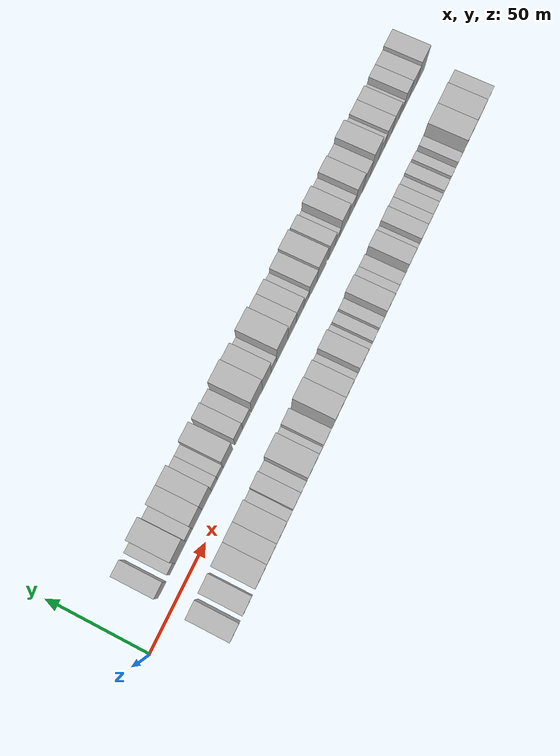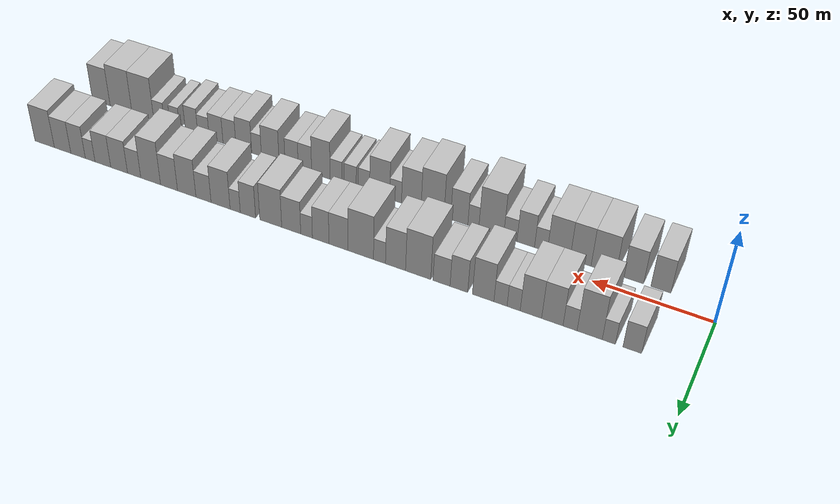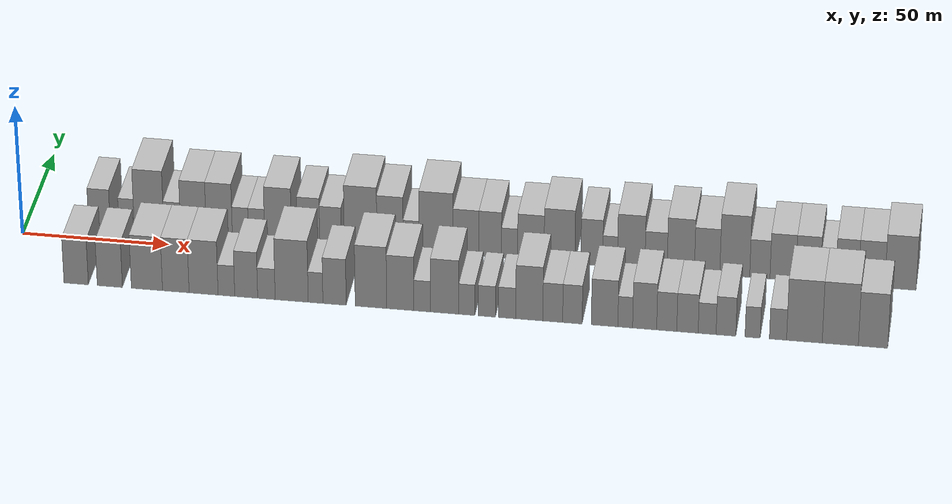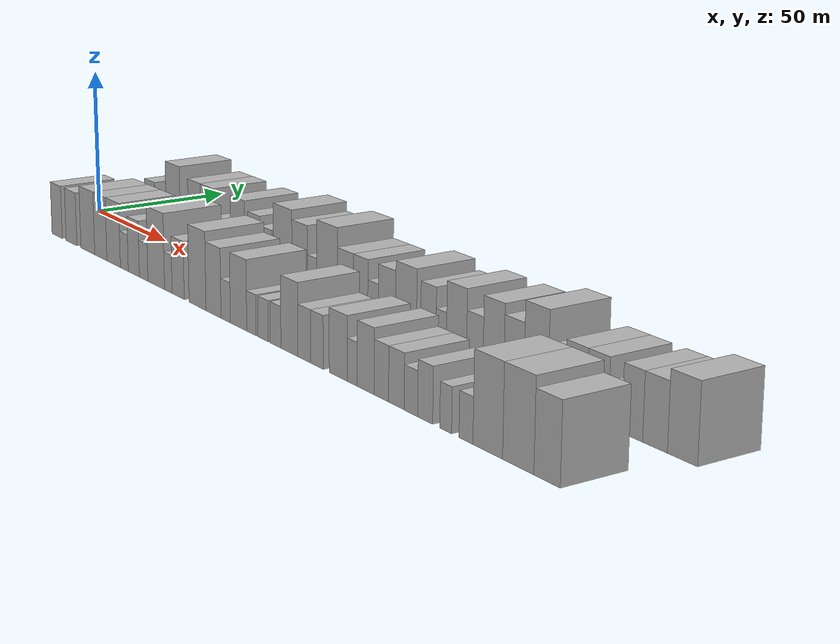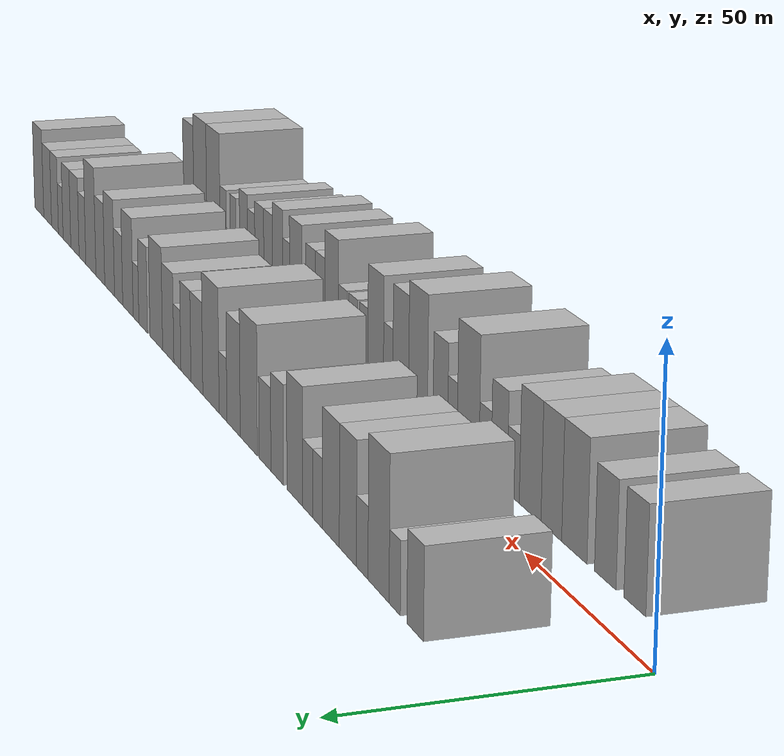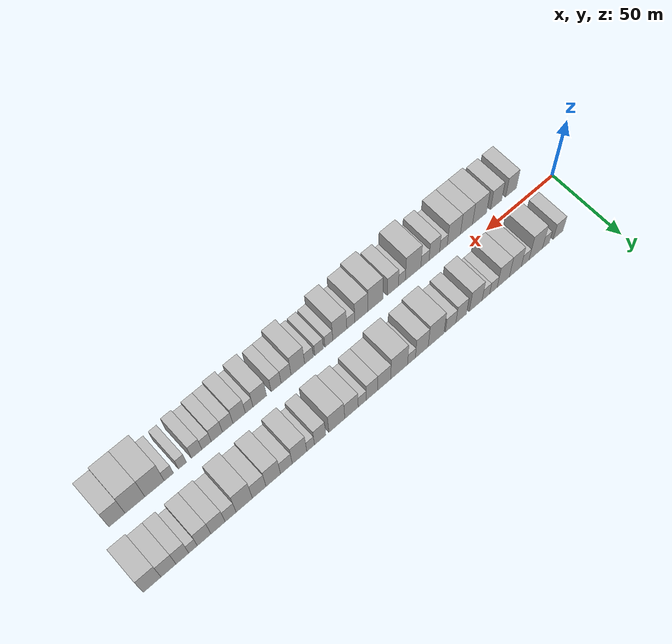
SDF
<sdf version="1.6">
 <world name="default">
  <scene>
   <sky><clouds><speed>12</speed></clouds></sky>
   <ambient>0.4 0.4 0.4 1</ambient>
   <background>0.7 0.7 0.7 1</background>
   <shadows>1</shadows>
  </scene>
  <gravity>0 0 -9.8066</gravity>
  <magnetic_field>6e-06 2.3e-05 -4.2e-05</magnetic_field>
  <physics default="0" name="default_physics" type="ode">
   <ode>
    <solver>
     <type>quick</type>
     <iters>10</iters>
     <sor>1.0</sor>
     <use_dynamic_moi_rescaling>0</use_dynamic_moi_rescaling>
    </solver>
    <constraints>
     <cfm>0</cfm>
     <erp>0.2</erp>
     <contact_max_correcting_vel>100</contact_max_correcting_vel>
     <contact_surface_layer>0.001</contact_surface_layer>
    </constraints>
   </ode>
   <max_step_size>0.004</max_step_size>
   <real_time_factor>1</real_time_factor>
   <real_time_update_rate>250</real_time_update_rate>
  </physics>
  <light name="sun" type="directional">
   <pose>0 0 10 0 0 0</pose>
   <diffuse>0.8 0.8 0.8 1</diffuse>
   <specular>0.2 0.2 0.2 1</specular>
   <attenuation>
    <range>1000</range>
    <constant>0.9</constant>
    <linear>0.01</linear>
    <quadratic>0.001</quadratic>
   </attenuation>
   <direction>-0.5 0.1 -0.9</direction>
  </light>
  <model name="building_1">
   <static>1</static>
   <pose>24.6984 17.5000 0 0.000000 0.000000 1.570796</pose>
   <link name="link">
    <pose>0 0 7.50 0 0 0</pose>
    <collision name="collision"><geometry><box><size>20.0000 7.3968 15.0000</size></box></geometry></collision>
    <visual name="visual">
     <cast_shadows>0</cast_shadows>
     <geometry><box><size>20.0000 7.3968 15.0000</size></box></geometry>
     <material>
      <script>
       <uri>model://HANNAS_wall/materials/scripts</uri>
       <uri>model://HANNAS_wall/materials/textures</uri>
       <name>vrc/HANNAS_wall</name>
      </script>
     </material>
    </visual>
   </link>
  </model>
  <model name="building_2">
   <static>1</static>
   <pose>34.0236 17.5000 0 0.000000 0.000000 1.570796</pose>
   <link name="link">
    <pose>0 0 6.00 0 0 0</pose>
    <collision name="collision"><geometry><box><size>20.0000 5.2536 12.0000</size></box></geometry></collision>
    <visual name="visual">
     <cast_shadows>0</cast_shadows>
     <geometry><box><size>20.0000 5.2536 12.0000</size></box></geometry>
     <material>
      <script>
       <uri>model://HANNAS_wall/materials/scripts</uri>
       <uri>model://HANNAS_wall/materials/textures</uri>
       <name>vrc/HANNAS_wall</name>
      </script>
     </material>
    </visual>
   </link>
  </model>
  <model name="building_3">
   <static>1</static>
   <pose>41.7122 17.5000 0 0.000000 0.000000 1.570796</pose>
   <link name="link">
    <pose>0 0 12.00 0 0 0</pose>
    <collision name="collision"><geometry><box><size>20.0000 10.1236 24.0000</size></box></geometry></collision>
    <visual name="visual">
     <cast_shadows>0</cast_shadows>
     <geometry><box><size>20.0000 10.1236 24.0000</size></box></geometry>
     <material>
      <script>
       <uri>model://HANNAS_wall/materials/scripts</uri>
       <uri>model://HANNAS_wall/materials/textures</uri>
       <name>vrc/HANNAS_wall</name>
      </script>
     </material>
    </visual>
   </link>
  </model>
  <model name="building_4">
   <static>1</static>
   <pose>49.6409 17.5000 0 0.000000 0.000000 1.570796</pose>
   <link name="link">
    <pose>0 0 6.00 0 0 0</pose>
    <collision name="collision"><geometry><box><size>20.0000 5.7338 12.0000</size></box></geometry></collision>
    <visual name="visual">
     <cast_shadows>0</cast_shadows>
     <geometry><box><size>20.0000 5.7338 12.0000</size></box></geometry>
     <material>
      <script>
       <uri>model://HANNAS_wall/materials/scripts</uri>
       <uri>model://HANNAS_wall/materials/textures</uri>
       <name>vrc/HANNAS_wall</name>
      </script>
     </material>
    </visual>
   </link>
  </model>
  <model name="building_5">
   <static>1</static>
   <pose>56.8956 17.5000 0 0.000000 0.000000 1.570796</pose>
   <link name="link">
    <pose>0 0 10.50 0 0 0</pose>
    <collision name="collision"><geometry><box><size>20.0000 8.7756 21.0000</size></box></geometry></collision>
    <visual name="visual">
     <cast_shadows>0</cast_shadows>
     <geometry><box><size>20.0000 8.7756 21.0000</size></box></geometry>
     <material>
      <script>
       <uri>model://HANNAS_wall/materials/scripts</uri>
       <uri>model://HANNAS_wall/materials/textures</uri>
       <name>vrc/HANNAS_wall</name>
      </script>
     </material>
    </visual>
   </link>
  </model>
  <model name="building_6">
   <static>1</static>
   <pose>65.7322 17.5000 0 0.000000 0.000000 1.570796</pose>
   <link name="link">
    <pose>0 0 10.50 0 0 0</pose>
    <collision name="collision"><geometry><box><size>20.0000 8.8976 21.0000</size></box></geometry></collision>
    <visual name="visual">
     <cast_shadows>0</cast_shadows>
     <geometry><box><size>20.0000 8.8976 21.0000</size></box></geometry>
     <material>
      <script>
       <uri>model://HANNAS_wall/materials/scripts</uri>
       <uri>model://HANNAS_wall/materials/textures</uri>
       <name>vrc/HANNAS_wall</name>
      </script>
     </material>
    </visual>
   </link>
  </model>
  <model name="building_7">
   <static>1</static>
   <pose>72.9210 17.5000 0 0.000000 0.000000 1.570796</pose>
   <link name="link">
    <pose>0 0 6.00 0 0 0</pose>
    <collision name="collision"><geometry><box><size>20.0000 5.4799 12.0000</size></box></geometry></collision>
    <visual name="visual">
     <cast_shadows>0</cast_shadows>
     <geometry><box><size>20.0000 5.4799 12.0000</size></box></geometry>
     <material>
      <script>
       <uri>model://HANNAS_wall/materials/scripts</uri>
       <uri>model://HANNAS_wall/materials/textures</uri>
       <name>vrc/HANNAS_wall</name>
      </script>
     </material>
    </visual>
   </link>
  </model>
  <model name="building_8">
   <static>1</static>
   <pose>78.4243 17.5000 0 0.000000 0.000000 1.570796</pose>
   <link name="link">
    <pose>0 0 6.00 0 0 0</pose>
    <collision name="collision"><geometry><box><size>20.0000 5.5267 12.0000</size></box></geometry></collision>
    <visual name="visual">
     <cast_shadows>0</cast_shadows>
     <geometry><box><size>20.0000 5.5267 12.0000</size></box></geometry>
     <material>
      <script>
       <uri>model://HANNAS_wall/materials/scripts</uri>
       <uri>model://HANNAS_wall/materials/textures</uri>
       <name>vrc/HANNAS_wall</name>
      </script>
     </material>
    </visual>
   </link>
  </model>
  <model name="building_9">
   <static>1</static>
   <pose>85.7504 17.5000 0 0.000000 0.000000 1.570796</pose>
   <link name="link">
    <pose>0 0 10.50 0 0 0</pose>
    <collision name="collision"><geometry><box><size>20.0000 9.1255 21.0000</size></box></geometry></collision>
    <visual name="visual">
     <cast_shadows>0</cast_shadows>
     <geometry><box><size>20.0000 9.1255 21.0000</size></box></geometry>
     <material>
      <script>
       <uri>model://HANNAS_wall/materials/scripts</uri>
       <uri>model://HANNAS_wall/materials/textures</uri>
       <name>vrc/HANNAS_wall</name>
      </script>
     </material>
    </visual>
   </link>
  </model>
  <model name="building_10">
   <static>1</static>
   <pose>96.1043 17.5000 0 0.000000 0.000000 1.570796</pose>
   <link name="link">
    <pose>0 0 9.00 0 0 0</pose>
    <collision name="collision"><geometry><box><size>20.0000 7.5824 18.0000</size></box></geometry></collision>
    <visual name="visual">
     <cast_shadows>0</cast_shadows>
     <geometry><box><size>20.0000 7.5824 18.0000</size></box></geometry>
     <material>
      <script>
       <uri>model://HANNAS_wall/materials/scripts</uri>
       <uri>model://HANNAS_wall/materials/textures</uri>
       <name>vrc/HANNAS_wall</name>
      </script>
     </material>
    </visual>
   </link>
  </model>
  <model name="building_11">
   <static>1</static>
   <pose>103.5795 17.5000 0 0.000000 0.000000 1.570796</pose>
   <link name="link">
    <pose>0 0 7.50 0 0 0</pose>
    <collision name="collision"><geometry><box><size>20.0000 7.3680 15.0000</size></box></geometry></collision>
    <visual name="visual">
     <cast_shadows>0</cast_shadows>
     <geometry><box><size>20.0000 7.3680 15.0000</size></box></geometry>
     <material>
      <script>
       <uri>model://HANNAS_wall/materials/scripts</uri>
       <uri>model://HANNAS_wall/materials/textures</uri>
       <name>vrc/HANNAS_wall</name>
      </script>
     </material>
    </visual>
   </link>
  </model>
  <model name="building_12">
   <static>1</static>
   <pose>113.7813 17.5000 0 0.000000 0.000000 1.570796</pose>
   <link name="link">
    <pose>0 0 12.00 0 0 0</pose>
    <collision name="collision"><geometry><box><size>20.0000 11.0357 24.0000</size></box></geometry></collision>
    <visual name="visual">
     <cast_shadows>0</cast_shadows>
     <geometry><box><size>20.0000 11.0357 24.0000</size></box></geometry>
     <material>
      <script>
       <uri>model://HANNAS_wall/materials/scripts</uri>
       <uri>model://HANNAS_wall/materials/textures</uri>
       <name>vrc/HANNAS_wall</name>
      </script>
     </material>
    </visual>
   </link>
  </model>
  <model name="building_13">
   <static>1</static>
   <pose>123.7441 17.5000 0 0.000000 0.000000 1.570796</pose>
   <link name="link">
    <pose>0 0 10.50 0 0 0</pose>
    <collision name="collision"><geometry><box><size>20.0000 8.8899 21.0000</size></box></geometry></collision>
    <visual name="visual">
     <cast_shadows>0</cast_shadows>
     <geometry><box><size>20.0000 8.8899 21.0000</size></box></geometry>
     <material>
      <script>
       <uri>model://HANNAS_wall/materials/scripts</uri>
       <uri>model://HANNAS_wall/materials/textures</uri>
       <name>vrc/HANNAS_wall</name>
      </script>
     </material>
    </visual>
   </link>
  </model>
  <model name="building_14">
   <static>1</static>
   <pose>130.8703 17.5000 0 0.000000 0.000000 1.570796</pose>
   <link name="link">
    <pose>0 0 6.00 0 0 0</pose>
    <collision name="collision"><geometry><box><size>20.0000 5.3623 12.0000</size></box></geometry></collision>
    <visual name="visual">
     <cast_shadows>0</cast_shadows>
     <geometry><box><size>20.0000 5.3623 12.0000</size></box></geometry>
     <material>
      <script>
       <uri>model://HANNAS_wall/materials/scripts</uri>
       <uri>model://HANNAS_wall/materials/textures</uri>
       <name>vrc/HANNAS_wall</name>
      </script>
     </material>
    </visual>
   </link>
  </model>
  <model name="building_15">
   <static>1</static>
   <pose>139.3018 17.5000 0 0.000000 0.000000 1.570796</pose>
   <link name="link">
    <pose>0 0 12.00 0 0 0</pose>
    <collision name="collision"><geometry><box><size>20.0000 11.5008 24.0000</size></box></geometry></collision>
    <visual name="visual">
     <cast_shadows>0</cast_shadows>
     <geometry><box><size>20.0000 11.5008 24.0000</size></box></geometry>
     <material>
      <script>
       <uri>model://HANNAS_wall/materials/scripts</uri>
       <uri>model://HANNAS_wall/materials/textures</uri>
       <name>vrc/HANNAS_wall</name>
      </script>
     </material>
    </visual>
   </link>
  </model>
  <model name="building_16">
   <static>1</static>
   <pose>149.3966 17.5000 0 0.000000 0.000000 1.570796</pose>
   <link name="link">
    <pose>0 0 9.00 0 0 0</pose>
    <collision name="collision"><geometry><box><size>20.0000 8.6888 18.0000</size></box></geometry></collision>
    <visual name="visual">
     <cast_shadows>0</cast_shadows>
     <geometry><box><size>20.0000 8.6888 18.0000</size></box></geometry>
     <material>
      <script>
       <uri>model://HANNAS_wall/materials/scripts</uri>
       <uri>model://HANNAS_wall/materials/textures</uri>
       <name>vrc/HANNAS_wall</name>
      </script>
     </material>
    </visual>
   </link>
  </model>
  <model name="building_17">
   <static>1</static>
   <pose>157.5444 17.5000 0 0.000000 0.000000 1.570796</pose>
   <link name="link">
    <pose>0 0 9.00 0 0 0</pose>
    <collision name="collision"><geometry><box><size>20.0000 7.6067 18.0000</size></box></geometry></collision>
    <visual name="visual">
     <cast_shadows>0</cast_shadows>
     <geometry><box><size>20.0000 7.6067 18.0000</size></box></geometry>
     <material>
      <script>
       <uri>model://HANNAS_wall/materials/scripts</uri>
       <uri>model://HANNAS_wall/materials/textures</uri>
       <name>vrc/HANNAS_wall</name>
      </script>
     </material>
    </visual>
   </link>
  </model>
  <model name="building_18">
   <static>1</static>
   <pose>164.0554 17.5000 0 0.000000 0.000000 1.570796</pose>
   <link name="link">
    <pose>0 0 6.00 0 0 0</pose>
    <collision name="collision"><geometry><box><size>20.0000 5.4154 12.0000</size></box></geometry></collision>
    <visual name="visual">
     <cast_shadows>0</cast_shadows>
     <geometry><box><size>20.0000 5.4154 12.0000</size></box></geometry>
     <material>
      <script>
       <uri>model://HANNAS_wall/materials/scripts</uri>
       <uri>model://HANNAS_wall/materials/textures</uri>
       <name>vrc/HANNAS_wall</name>
      </script>
     </material>
    </visual>
   </link>
  </model>
  <model name="building_19">
   <static>1</static>
   <pose>171.2047 17.5000 0 0.000000 0.000000 1.570796</pose>
   <link name="link">
    <pose>0 0 9.00 0 0 0</pose>
    <collision name="collision"><geometry><box><size>20.0000 8.8832 18.0000</size></box></geometry></collision>
    <visual name="visual">
     <cast_shadows>0</cast_shadows>
     <geometry><box><size>20.0000 8.8832 18.0000</size></box></geometry>
     <material>
      <script>
       <uri>model://HANNAS_wall/materials/scripts</uri>
       <uri>model://HANNAS_wall/materials/textures</uri>
       <name>vrc/HANNAS_wall</name>
      </script>
     </material>
    </visual>
   </link>
  </model>
  <model name="building_20">
   <static>1</static>
   <pose>180.8166 17.5000 0 0.000000 0.000000 1.570796</pose>
   <link name="link">
    <pose>0 0 10.50 0 0 0</pose>
    <collision name="collision"><geometry><box><size>20.0000 10.3407 21.0000</size></box></geometry></collision>
    <visual name="visual">
     <cast_shadows>0</cast_shadows>
     <geometry><box><size>20.0000 10.3407 21.0000</size></box></geometry>
     <material>
      <script>
       <uri>model://HANNAS_wall/materials/scripts</uri>
       <uri>model://HANNAS_wall/materials/textures</uri>
       <name>vrc/HANNAS_wall</name>
      </script>
     </material>
    </visual>
   </link>
  </model>
  <model name="building_21">
   <static>1</static>
   <pose>191.6453 17.5000 0 0.000000 0.000000 1.570796</pose>
   <link name="link">
    <pose>0 0 9.00 0 0 0</pose>
    <collision name="collision"><geometry><box><size>20.0000 7.3166 18.0000</size></box></geometry></collision>
    <visual name="visual">
     <cast_shadows>0</cast_shadows>
     <geometry><box><size>20.0000 7.3166 18.0000</size></box></geometry>
     <material>
      <script>
       <uri>model://HANNAS_wall/materials/scripts</uri>
       <uri>model://HANNAS_wall/materials/textures</uri>
       <name>vrc/HANNAS_wall</name>
      </script>
     </material>
    </visual>
   </link>
  </model>
  <model name="building_22">
   <static>1</static>
   <pose>197.7555 17.5000 0 0.000000 0.000000 1.570796</pose>
   <link name="link">
    <pose>0 0 6.00 0 0 0</pose>
    <collision name="collision"><geometry><box><size>20.0000 4.9037 12.0000</size></box></geometry></collision>
    <visual name="visual">
     <cast_shadows>0</cast_shadows>
     <geometry><box><size>20.0000 4.9037 12.0000</size></box></geometry>
     <material>
      <script>
       <uri>model://HANNAS_wall/materials/scripts</uri>
       <uri>model://HANNAS_wall/materials/textures</uri>
       <name>vrc/HANNAS_wall</name>
      </script>
     </material>
    </visual>
   </link>
  </model>
  <model name="building_23">
   <static>1</static>
   <pose>204.8194 17.5000 0 0.000000 0.000000 1.570796</pose>
   <link name="link">
    <pose>0 0 10.50 0 0 0</pose>
    <collision name="collision"><geometry><box><size>20.0000 9.2242 21.0000</size></box></geometry></collision>
    <visual name="visual">
     <cast_shadows>0</cast_shadows>
     <geometry><box><size>20.0000 9.2242 21.0000</size></box></geometry>
     <material>
      <script>
       <uri>model://HANNAS_wall/materials/scripts</uri>
       <uri>model://HANNAS_wall/materials/textures</uri>
       <name>vrc/HANNAS_wall</name>
      </script>
     </material>
    </visual>
   </link>
  </model>
  <model name="building_24">
   <static>1</static>
   <pose>213.1341 17.5000 0 0.000000 0.000000 1.570796</pose>
   <link name="link">
    <pose>0 0 7.50 0 0 0</pose>
    <collision name="collision"><geometry><box><size>20.0000 7.4053 15.0000</size></box></geometry></collision>
    <visual name="visual">
     <cast_shadows>0</cast_shadows>
     <geometry><box><size>20.0000 7.4053 15.0000</size></box></geometry>
     <material>
      <script>
       <uri>model://HANNAS_wall/materials/scripts</uri>
       <uri>model://HANNAS_wall/materials/textures</uri>
       <name>vrc/HANNAS_wall</name>
      </script>
     </material>
    </visual>
   </link>
  </model>
  <model name="building_25">
   <static>1</static>
   <pose>221.3906 17.5000 0 0.000000 0.000000 1.570796</pose>
   <link name="link">
    <pose>0 0 10.50 0 0 0</pose>
    <collision name="collision"><geometry><box><size>20.0000 9.1077 21.0000</size></box></geometry></collision>
    <visual name="visual">
     <cast_shadows>0</cast_shadows>
     <geometry><box><size>20.0000 9.1077 21.0000</size></box></geometry>
     <material>
      <script>
       <uri>model://HANNAS_wall/materials/scripts</uri>
       <uri>model://HANNAS_wall/materials/textures</uri>
       <name>vrc/HANNAS_wall</name>
      </script>
     </material>
    </visual>
   </link>
  </model>
  <model name="building_26">
   <static>1</static>
   <pose>230.1751 17.5000 0 0.000000 0.000000 1.570796</pose>
   <link name="link">
    <pose>0 0 9.00 0 0 0</pose>
    <collision name="collision"><geometry><box><size>20.0000 8.4612 18.0000</size></box></geometry></collision>
    <visual name="visual">
     <cast_shadows>0</cast_shadows>
     <geometry><box><size>20.0000 8.4612 18.0000</size></box></geometry>
     <material>
      <script>
       <uri>model://HANNAS_wall/materials/scripts</uri>
       <uri>model://HANNAS_wall/materials/textures</uri>
       <name>vrc/HANNAS_wall</name>
      </script>
     </material>
    </visual>
   </link>
  </model>
  <model name="building_27">
   <static>1</static>
   <pose>239.3785 17.5000 0 0.000000 0.000000 1.570796</pose>
   <link name="link">
    <pose>0 0 12.00 0 0 0</pose>
    <collision name="collision"><geometry><box><size>20.0000 9.9455 24.0000</size></box></geometry></collision>
    <visual name="visual">
     <cast_shadows>0</cast_shadows>
     <geometry><box><size>20.0000 9.9455 24.0000</size></box></geometry>
     <material>
      <script>
       <uri>model://HANNAS_wall/materials/scripts</uri>
       <uri>model://HANNAS_wall/materials/textures</uri>
       <name>vrc/HANNAS_wall</name>
      </script>
     </material>
    </visual>
   </link>
  </model>
  <model name="building_28">
   <static>1</static>
   <pose>247.7230 17.5000 0 0.000000 0.000000 1.570796</pose>
   <link name="link">
    <pose>0 0 7.50 0 0 0</pose>
    <collision name="collision"><geometry><box><size>20.0000 6.7434 15.0000</size></box></geometry></collision>
    <visual name="visual">
     <cast_shadows>0</cast_shadows>
     <geometry><box><size>20.0000 6.7434 15.0000</size></box></geometry>
     <material>
      <script>
       <uri>model://HANNAS_wall/materials/scripts</uri>
       <uri>model://HANNAS_wall/materials/textures</uri>
       <name>vrc/HANNAS_wall</name>
      </script>
     </material>
    </visual>
   </link>
  </model>
  <model name="building_29">
   <static>1</static>
   <pose>255.3765 17.5000 0 0.000000 0.000000 1.570796</pose>
   <link name="link">
    <pose>0 0 9.00 0 0 0</pose>
    <collision name="collision"><geometry><box><size>20.0000 8.5637 18.0000</size></box></geometry></collision>
    <visual name="visual">
     <cast_shadows>0</cast_shadows>
     <geometry><box><size>20.0000 8.5637 18.0000</size></box></geometry>
     <material>
      <script>
       <uri>model://HANNAS_wall/materials/scripts</uri>
       <uri>model://HANNAS_wall/materials/textures</uri>
       <name>vrc/HANNAS_wall</name>
      </script>
     </material>
    </visual>
   </link>
  </model>
  <model name="building_30">
   <static>1</static>
   <pose>263.7326 17.5000 0 0.000000 0.000000 1.570796</pose>
   <link name="link">
    <pose>0 0 9.00 0 0 0</pose>
    <collision name="collision"><geometry><box><size>20.0000 8.1484 18.0000</size></box></geometry></collision>
    <visual name="visual">
     <cast_shadows>0</cast_shadows>
     <geometry><box><size>20.0000 8.1484 18.0000</size></box></geometry>
     <material>
      <script>
       <uri>model://HANNAS_wall/materials/scripts</uri>
       <uri>model://HANNAS_wall/materials/textures</uri>
       <name>vrc/HANNAS_wall</name>
      </script>
     </material>
    </visual>
   </link>
  </model>
  <model name="building_31">
   <static>1</static>
   <pose>270.3282 17.5000 0 0.000000 0.000000 1.570796</pose>
   <link name="link">
    <pose>0 0 6.00 0 0 0</pose>
    <collision name="collision"><geometry><box><size>20.0000 5.0429 12.0000</size></box></geometry></collision>
    <visual name="visual">
     <cast_shadows>0</cast_shadows>
     <geometry><box><size>20.0000 5.0429 12.0000</size></box></geometry>
     <material>
      <script>
       <uri>model://HANNAS_wall/materials/scripts</uri>
       <uri>model://HANNAS_wall/materials/textures</uri>
       <name>vrc/HANNAS_wall</name>
      </script>
     </material>
    </visual>
   </link>
  </model>
  <model name="building_32">
   <static>1</static>
   <pose>276.6278 17.5000 0 0.000000 0.000000 1.570796</pose>
   <link name="link">
    <pose>0 0 9.00 0 0 0</pose>
    <collision name="collision"><geometry><box><size>20.0000 7.5561 18.0000</size></box></geometry></collision>
    <visual name="visual">
     <cast_shadows>0</cast_shadows>
     <geometry><box><size>20.0000 7.5561 18.0000</size></box></geometry>
     <material>
      <script>
       <uri>model://HANNAS_wall/materials/scripts</uri>
       <uri>model://HANNAS_wall/materials/textures</uri>
       <name>vrc/HANNAS_wall</name>
      </script>
     </material>
    </visual>
   </link>
  </model>
  <model name="building_33">
   <static>1</static>
   <pose>284.7762 17.5000 0 0.000000 0.000000 1.570796</pose>
   <link name="link">
    <pose>0 0 9.00 0 0 0</pose>
    <collision name="collision"><geometry><box><size>20.0000 8.7407 18.0000</size></box></geometry></collision>
    <visual name="visual">
     <cast_shadows>0</cast_shadows>
     <geometry><box><size>20.0000 8.7407 18.0000</size></box></geometry>
     <material>
      <script>
       <uri>model://HANNAS_wall/materials/scripts</uri>
       <uri>model://HANNAS_wall/materials/textures</uri>
       <name>vrc/HANNAS_wall</name>
      </script>
     </material>
    </visual>
   </link>
  </model>
  <model name="building_34">
   <static>1</static>
   <pose>294.3097 17.5000 0 0.000000 0.000000 1.570796</pose>
   <link name="link">
    <pose>0 0 10.50 0 0 0</pose>
    <collision name="collision"><geometry><box><size>20.0000 10.3263 21.0000</size></box></geometry></collision>
    <visual name="visual">
     <cast_shadows>0</cast_shadows>
     <geometry><box><size>20.0000 10.3263 21.0000</size></box></geometry>
     <material>
      <script>
       <uri>model://HANNAS_wall/materials/scripts</uri>
       <uri>model://HANNAS_wall/materials/textures</uri>
       <name>vrc/HANNAS_wall</name>
      </script>
     </material>
    </visual>
   </link>
  </model>
  <model name="building_35">
   <static>1</static>
   <pose>24.1064 -17.5000 0 0.000000 0.000000 1.570796</pose>
   <link name="link">
    <pose>0 0 9.00 0 0 0</pose>
    <collision name="collision"><geometry><box><size>20.0000 8.2128 18.0000</size></box></geometry></collision>
    <visual name="visual">
     <cast_shadows>0</cast_shadows>
     <geometry><box><size>20.0000 8.2128 18.0000</size></box></geometry>
     <material>
      <script>
       <uri>model://HANNAS_wall/materials/scripts</uri>
       <uri>model://HANNAS_wall/materials/textures</uri>
       <name>vrc/HANNAS_wall</name>
      </script>
     </material>
    </visual>
   </link>
  </model>
  <model name="building_36">
   <static>1</static>
   <pose>35.4482 -17.5000 0 0.000000 0.000000 1.570796</pose>
   <link name="link">
    <pose>0 0 9.00 0 0 0</pose>
    <collision name="collision"><geometry><box><size>20.0000 8.4707 18.0000</size></box></geometry></collision>
    <visual name="visual">
     <cast_shadows>0</cast_shadows>
     <geometry><box><size>20.0000 8.4707 18.0000</size></box></geometry>
     <material>
      <script>
       <uri>model://HANNAS_wall/materials/scripts</uri>
       <uri>model://HANNAS_wall/materials/textures</uri>
       <name>vrc/HANNAS_wall</name>
      </script>
     </material>
    </visual>
   </link>
  </model>
  <model name="building_37">
   <static>1</static>
   <pose>47.9282 -17.5000 0 0.000000 0.000000 1.570796</pose>
   <link name="link">
    <pose>0 0 10.50 0 0 0</pose>
    <collision name="collision"><geometry><box><size>20.0000 10.4893 21.0000</size></box></geometry></collision>
    <visual name="visual">
     <cast_shadows>0</cast_shadows>
     <geometry><box><size>20.0000 10.4893 21.0000</size></box></geometry>
     <material>
      <script>
       <uri>model://HANNAS_wall/materials/scripts</uri>
       <uri>model://HANNAS_wall/materials/textures</uri>
       <name>vrc/HANNAS_wall</name>
      </script>
     </material>
    </visual>
   </link>
  </model>
  <model name="building_38">
   <static>1</static>
   <pose>57.6361 -17.5000 0 0.000000 0.000000 1.570796</pose>
   <link name="link">
    <pose>0 0 10.50 0 0 0</pose>
    <collision name="collision"><geometry><box><size>20.0000 8.9265 21.0000</size></box></geometry></collision>
    <visual name="visual">
     <cast_shadows>0</cast_shadows>
     <geometry><box><size>20.0000 8.9265 21.0000</size></box></geometry>
     <material>
      <script>
       <uri>model://HANNAS_wall/materials/scripts</uri>
       <uri>model://HANNAS_wall/materials/textures</uri>
       <name>vrc/HANNAS_wall</name>
      </script>
     </material>
    </visual>
   </link>
  </model>
  <model name="building_39">
   <static>1</static>
   <pose>66.9579 -17.5000 0 0.000000 0.000000 1.570796</pose>
   <link name="link">
    <pose>0 0 10.50 0 0 0</pose>
    <collision name="collision"><geometry><box><size>20.0000 9.7171 21.0000</size></box></geometry></collision>
    <visual name="visual">
     <cast_shadows>0</cast_shadows>
     <geometry><box><size>20.0000 9.7171 21.0000</size></box></geometry>
     <material>
      <script>
       <uri>model://HANNAS_wall/materials/scripts</uri>
       <uri>model://HANNAS_wall/materials/textures</uri>
       <name>vrc/HANNAS_wall</name>
      </script>
     </material>
    </visual>
   </link>
  </model>
  <model name="building_40">
   <static>1</static>
   <pose>74.6018 -17.5000 0 0.000000 0.000000 1.570796</pose>
   <link name="link">
    <pose>0 0 6.00 0 0 0</pose>
    <collision name="collision"><geometry><box><size>20.0000 5.5706 12.0000</size></box></geometry></collision>
    <visual name="visual">
     <cast_shadows>0</cast_shadows>
     <geometry><box><size>20.0000 5.5706 12.0000</size></box></geometry>
     <material>
      <script>
       <uri>model://HANNAS_wall/materials/scripts</uri>
       <uri>model://HANNAS_wall/materials/textures</uri>
       <name>vrc/HANNAS_wall</name>
      </script>
     </material>
    </visual>
   </link>
  </model>
  <model name="building_41">
   <static>1</static>
   <pose>81.2225 -17.5000 0 0.000000 0.000000 1.570796</pose>
   <link name="link">
    <pose>0 0 9.00 0 0 0</pose>
    <collision name="collision"><geometry><box><size>20.0000 7.6708 18.0000</size></box></geometry></collision>
    <visual name="visual">
     <cast_shadows>0</cast_shadows>
     <geometry><box><size>20.0000 7.6708 18.0000</size></box></geometry>
     <material>
      <script>
       <uri>model://HANNAS_wall/materials/scripts</uri>
       <uri>model://HANNAS_wall/materials/textures</uri>
       <name>vrc/HANNAS_wall</name>
      </script>
     </material>
    </visual>
   </link>
  </model>
  <model name="building_42">
   <static>1</static>
   <pose>87.9869 -17.5000 0 0.000000 0.000000 1.570796</pose>
   <link name="link">
    <pose>0 0 6.00 0 0 0</pose>
    <collision name="collision"><geometry><box><size>20.0000 5.8581 12.0000</size></box></geometry></collision>
    <visual name="visual">
     <cast_shadows>0</cast_shadows>
     <geometry><box><size>20.0000 5.8581 12.0000</size></box></geometry>
     <material>
      <script>
       <uri>model://HANNAS_wall/materials/scripts</uri>
       <uri>model://HANNAS_wall/materials/textures</uri>
       <name>vrc/HANNAS_wall</name>
      </script>
     </material>
    </visual>
   </link>
  </model>
  <model name="building_43">
   <static>1</static>
   <pose>96.4303 -17.5000 0 0.000000 0.000000 1.570796</pose>
   <link name="link">
    <pose>0 0 12.00 0 0 0</pose>
    <collision name="collision"><geometry><box><size>20.0000 11.0286 24.0000</size></box></geometry></collision>
    <visual name="visual">
     <cast_shadows>0</cast_shadows>
     <geometry><box><size>20.0000 11.0286 24.0000</size></box></geometry>
     <material>
      <script>
       <uri>model://HANNAS_wall/materials/scripts</uri>
       <uri>model://HANNAS_wall/materials/textures</uri>
       <name>vrc/HANNAS_wall</name>
      </script>
     </material>
    </visual>
   </link>
  </model>
  <model name="building_44">
   <static>1</static>
   <pose>104.3903 -17.5000 0 0.000000 0.000000 1.570796</pose>
   <link name="link">
    <pose>0 0 6.00 0 0 0</pose>
    <collision name="collision"><geometry><box><size>20.0000 4.8915 12.0000</size></box></geometry></collision>
    <visual name="visual">
     <cast_shadows>0</cast_shadows>
     <geometry><box><size>20.0000 4.8915 12.0000</size></box></geometry>
     <material>
      <script>
       <uri>model://HANNAS_wall/materials/scripts</uri>
       <uri>model://HANNAS_wall/materials/textures</uri>
       <name>vrc/HANNAS_wall</name>
      </script>
     </material>
    </visual>
   </link>
  </model>
  <model name="building_45">
   <static>1</static>
   <pose>110.7157 -17.5000 0 0.000000 0.000000 1.570796</pose>
   <link name="link">
    <pose>0 0 9.00 0 0 0</pose>
    <collision name="collision"><geometry><box><size>20.0000 7.7593 18.0000</size></box></geometry></collision>
    <visual name="visual">
     <cast_shadows>0</cast_shadows>
     <geometry><box><size>20.0000 7.7593 18.0000</size></box></geometry>
     <material>
      <script>
       <uri>model://HANNAS_wall/materials/scripts</uri>
       <uri>model://HANNAS_wall/materials/textures</uri>
       <name>vrc/HANNAS_wall</name>
      </script>
     </material>
    </visual>
   </link>
  </model>
  <model name="building_46">
   <static>1</static>
   <pose>122.8324 -17.5000 0 0.000000 0.000000 1.570796</pose>
   <link name="link">
    <pose>0 0 12.00 0 0 0</pose>
    <collision name="collision"><geometry><box><size>20.0000 10.4742 24.0000</size></box></geometry></collision>
    <visual name="visual">
     <cast_shadows>0</cast_shadows>
     <geometry><box><size>20.0000 10.4742 24.0000</size></box></geometry>
     <material>
      <script>
       <uri>model://HANNAS_wall/materials/scripts</uri>
       <uri>model://HANNAS_wall/materials/textures</uri>
       <name>vrc/HANNAS_wall</name>
      </script>
     </material>
    </visual>
   </link>
  </model>
  <model name="building_47">
   <static>1</static>
   <pose>132.5790 -17.5000 0 0.000000 0.000000 1.570796</pose>
   <link name="link">
    <pose>0 0 10.50 0 0 0</pose>
    <collision name="collision"><geometry><box><size>20.0000 9.0189 21.0000</size></box></geometry></collision>
    <visual name="visual">
     <cast_shadows>0</cast_shadows>
     <geometry><box><size>20.0000 9.0189 21.0000</size></box></geometry>
     <material>
      <script>
       <uri>model://HANNAS_wall/materials/scripts</uri>
       <uri>model://HANNAS_wall/materials/textures</uri>
       <name>vrc/HANNAS_wall</name>
      </script>
     </material>
    </visual>
   </link>
  </model>
  <model name="building_48">
   <static>1</static>
   <pose>139.8353 -17.5000 0 0.000000 0.000000 1.570796</pose>
   <link name="link">
    <pose>0 0 6.00 0 0 0</pose>
    <collision name="collision"><geometry><box><size>20.0000 5.4937 12.0000</size></box></geometry></collision>
    <visual name="visual">
     <cast_shadows>0</cast_shadows>
     <geometry><box><size>20.0000 5.4937 12.0000</size></box></geometry>
     <material>
      <script>
       <uri>model://HANNAS_wall/materials/scripts</uri>
       <uri>model://HANNAS_wall/materials/textures</uri>
       <name>vrc/HANNAS_wall</name>
      </script>
     </material>
    </visual>
   </link>
  </model>
  <model name="building_49">
   <static>1</static>
   <pose>147.2919 -17.5000 0 0.000000 0.000000 1.570796</pose>
   <link name="link">
    <pose>0 0 10.50 0 0 0</pose>
    <collision name="collision"><geometry><box><size>20.0000 9.4196 21.0000</size></box></geometry></collision>
    <visual name="visual">
     <cast_shadows>0</cast_shadows>
     <geometry><box><size>20.0000 9.4196 21.0000</size></box></geometry>
     <material>
      <script>
       <uri>model://HANNAS_wall/materials/scripts</uri>
       <uri>model://HANNAS_wall/materials/textures</uri>
       <name>vrc/HANNAS_wall</name>
      </script>
     </material>
    </visual>
   </link>
  </model>
  <model name="building_50">
   <static>1</static>
   <pose>154.6653 -17.5000 0 0.000000 0.000000 1.570796</pose>
   <link name="link">
    <pose>0 0 6.00 0 0 0</pose>
    <collision name="collision"><geometry><box><size>20.0000 5.3271 12.0000</size></box></geometry></collision>
    <visual name="visual">
     <cast_shadows>0</cast_shadows>
     <geometry><box><size>20.0000 5.3271 12.0000</size></box></geometry>
     <material>
      <script>
       <uri>model://HANNAS_wall/materials/scripts</uri>
       <uri>model://HANNAS_wall/materials/textures</uri>
       <name>vrc/HANNAS_wall</name>
      </script>
     </material>
    </visual>
   </link>
  </model>
  <model name="building_51">
   <static>1</static>
   <pose>161.2080 -17.5000 0 0.000000 0.000000 1.570796</pose>
   <link name="link">
    <pose>0 0 6.00 0 0 0</pose>
    <collision name="collision"><geometry><box><size>20.0000 5.7583 12.0000</size></box></geometry></collision>
    <visual name="visual">
     <cast_shadows>0</cast_shadows>
     <geometry><box><size>20.0000 5.7583 12.0000</size></box></geometry>
     <material>
      <script>
       <uri>model://HANNAS_wall/materials/scripts</uri>
       <uri>model://HANNAS_wall/materials/textures</uri>
       <name>vrc/HANNAS_wall</name>
      </script>
     </material>
    </visual>
   </link>
  </model>
  <model name="building_52">
   <static>1</static>
   <pose>167.9482 -17.5000 0 0.000000 0.000000 1.570796</pose>
   <link name="link">
    <pose>0 0 6.00 0 0 0</pose>
    <collision name="collision"><geometry><box><size>20.0000 5.7222 12.0000</size></box></geometry></collision>
    <visual name="visual">
     <cast_shadows>0</cast_shadows>
     <geometry><box><size>20.0000 5.7222 12.0000</size></box></geometry>
     <material>
      <script>
       <uri>model://HANNAS_wall/materials/scripts</uri>
       <uri>model://HANNAS_wall/materials/textures</uri>
       <name>vrc/HANNAS_wall</name>
      </script>
     </material>
    </visual>
   </link>
  </model>
  <model name="building_53">
   <static>1</static>
   <pose>175.2783 -17.5000 0 0.000000 0.000000 1.570796</pose>
   <link name="link">
    <pose>0 0 10.50 0 0 0</pose>
    <collision name="collision"><geometry><box><size>20.0000 8.9378 21.0000</size></box></geometry></collision>
    <visual name="visual">
     <cast_shadows>0</cast_shadows>
     <geometry><box><size>20.0000 8.9378 21.0000</size></box></geometry>
     <material>
      <script>
       <uri>model://HANNAS_wall/materials/scripts</uri>
       <uri>model://HANNAS_wall/materials/textures</uri>
       <name>vrc/HANNAS_wall</name>
      </script>
     </material>
    </visual>
   </link>
  </model>
  <model name="building_54">
   <static>1</static>
   <pose>183.0060 -17.5000 0 0.000000 0.000000 1.570796</pose>
   <link name="link">
    <pose>0 0 7.50 0 0 0</pose>
    <collision name="collision"><geometry><box><size>20.0000 6.5176 15.0000</size></box></geometry></collision>
    <visual name="visual">
     <cast_shadows>0</cast_shadows>
     <geometry><box><size>20.0000 6.5176 15.0000</size></box></geometry>
     <material>
      <script>
       <uri>model://HANNAS_wall/materials/scripts</uri>
       <uri>model://HANNAS_wall/materials/textures</uri>
       <name>vrc/HANNAS_wall</name>
      </script>
     </material>
    </visual>
   </link>
  </model>
  <model name="building_55">
   <static>1</static>
   <pose>189.4736 -17.5000 0 0.000000 0.000000 1.570796</pose>
   <link name="link">
    <pose>0 0 7.50 0 0 0</pose>
    <collision name="collision"><geometry><box><size>20.0000 6.4178 15.0000</size></box></geometry></collision>
    <visual name="visual">
     <cast_shadows>0</cast_shadows>
     <geometry><box><size>20.0000 6.4178 15.0000</size></box></geometry>
     <material>
      <script>
       <uri>model://HANNAS_wall/materials/scripts</uri>
       <uri>model://HANNAS_wall/materials/textures</uri>
       <name>vrc/HANNAS_wall</name>
      </script>
     </material>
    </visual>
   </link>
  </model>
  <model name="building_56">
   <static>1</static>
   <pose>200.0510 -17.5000 0 0.000000 0.000000 1.570796</pose>
   <link name="link">
    <pose>0 0 9.00 0 0 0</pose>
    <collision name="collision"><geometry><box><size>20.0000 8.7370 18.0000</size></box></geometry></collision>
    <visual name="visual">
     <cast_shadows>0</cast_shadows>
     <geometry><box><size>20.0000 8.7370 18.0000</size></box></geometry>
     <material>
      <script>
       <uri>model://HANNAS_wall/materials/scripts</uri>
       <uri>model://HANNAS_wall/materials/textures</uri>
       <name>vrc/HANNAS_wall</name>
      </script>
     </material>
    </visual>
   </link>
  </model>
  <model name="building_57">
   <static>1</static>
   <pose>206.8393 -17.5000 0 0.000000 0.000000 1.570796</pose>
   <link name="link">
    <pose>0 0 6.00 0 0 0</pose>
    <collision name="collision"><geometry><box><size>20.0000 4.8397 12.0000</size></box></geometry></collision>
    <visual name="visual">
     <cast_shadows>0</cast_shadows>
     <geometry><box><size>20.0000 4.8397 12.0000</size></box></geometry>
     <material>
      <script>
       <uri>model://HANNAS_wall/materials/scripts</uri>
       <uri>model://HANNAS_wall/materials/textures</uri>
       <name>vrc/HANNAS_wall</name>
      </script>
     </material>
    </visual>
   </link>
  </model>
  <model name="building_58">
   <static>1</static>
   <pose>213.2057 -17.5000 0 0.000000 0.000000 1.570796</pose>
   <link name="link">
    <pose>0 0 9.00 0 0 0</pose>
    <collision name="collision"><geometry><box><size>20.0000 7.8933 18.0000</size></box></geometry></collision>
    <visual name="visual">
     <cast_shadows>0</cast_shadows>
     <geometry><box><size>20.0000 7.8933 18.0000</size></box></geometry>
     <material>
      <script>
       <uri>model://HANNAS_wall/materials/scripts</uri>
       <uri>model://HANNAS_wall/materials/textures</uri>
       <name>vrc/HANNAS_wall</name>
      </script>
     </material>
    </visual>
   </link>
  </model>
  <model name="building_59">
   <static>1</static>
   <pose>220.4458 -17.5000 0 0.000000 0.000000 1.570796</pose>
   <link name="link">
    <pose>0 0 7.50 0 0 0</pose>
    <collision name="collision"><geometry><box><size>20.0000 6.5869 15.0000</size></box></geometry></collision>
    <visual name="visual">
     <cast_shadows>0</cast_shadows>
     <geometry><box><size>20.0000 6.5869 15.0000</size></box></geometry>
     <material>
      <script>
       <uri>model://HANNAS_wall/materials/scripts</uri>
       <uri>model://HANNAS_wall/materials/textures</uri>
       <name>vrc/HANNAS_wall</name>
      </script>
     </material>
    </visual>
   </link>
  </model>
  <model name="building_60">
   <static>1</static>
   <pose>227.2443 -17.5000 0 0.000000 0.000000 1.570796</pose>
   <link name="link">
    <pose>0 0 7.50 0 0 0</pose>
    <collision name="collision"><geometry><box><size>20.0000 7.0101 15.0000</size></box></geometry></collision>
    <visual name="visual">
     <cast_shadows>0</cast_shadows>
     <geometry><box><size>20.0000 7.0101 15.0000</size></box></geometry>
     <material>
      <script>
       <uri>model://HANNAS_wall/materials/scripts</uri>
       <uri>model://HANNAS_wall/materials/textures</uri>
       <name>vrc/HANNAS_wall</name>
      </script>
     </material>
    </visual>
   </link>
  </model>
  <model name="building_61">
   <static>1</static>
   <pose>233.6816 -17.5000 0 0.000000 0.000000 1.570796</pose>
   <link name="link">
    <pose>0 0 6.00 0 0 0</pose>
    <collision name="collision"><geometry><box><size>20.0000 5.8646 12.0000</size></box></geometry></collision>
    <visual name="visual">
     <cast_shadows>0</cast_shadows>
     <geometry><box><size>20.0000 5.8646 12.0000</size></box></geometry>
     <material>
      <script>
       <uri>model://HANNAS_wall/materials/scripts</uri>
       <uri>model://HANNAS_wall/materials/textures</uri>
       <name>vrc/HANNAS_wall</name>
      </script>
     </material>
    </visual>
   </link>
  </model>
  <model name="building_62">
   <static>1</static>
   <pose>239.8401 -17.5000 0 0.000000 0.000000 1.570796</pose>
   <link name="link">
    <pose>0 0 7.50 0 0 0</pose>
    <collision name="collision"><geometry><box><size>20.0000 6.4524 15.0000</size></box></geometry></collision>
    <visual name="visual">
     <cast_shadows>0</cast_shadows>
     <geometry><box><size>20.0000 6.4524 15.0000</size></box></geometry>
     <material>
      <script>
       <uri>model://HANNAS_wall/materials/scripts</uri>
       <uri>model://HANNAS_wall/materials/textures</uri>
       <name>vrc/HANNAS_wall</name>
      </script>
     </material>
    </visual>
   </link>
  </model>
  <model name="building_63">
   <static>1</static>
   <pose>248.5388 -17.5000 0 0.000000 0.000000 1.570796</pose>
   <link name="link">
    <pose>0 0 6.00 0 0 0</pose>
    <collision name="collision"><geometry><box><size>20.0000 4.9450 12.0000</size></box></geometry></collision>
    <visual name="visual">
     <cast_shadows>0</cast_shadows>
     <geometry><box><size>20.0000 4.9450 12.0000</size></box></geometry>
     <material>
      <script>
       <uri>model://HANNAS_wall/materials/scripts</uri>
       <uri>model://HANNAS_wall/materials/textures</uri>
       <name>vrc/HANNAS_wall</name>
      </script>
     </material>
    </visual>
   </link>
  </model>
  <model name="building_64">
   <static>1</static>
   <pose>256.8130 -17.5000 0 0.000000 0.000000 1.570796</pose>
   <link name="link">
    <pose>0 0 6.00 0 0 0</pose>
    <collision name="collision"><geometry><box><size>20.0000 5.6035 12.0000</size></box></geometry></collision>
    <visual name="visual">
     <cast_shadows>0</cast_shadows>
     <geometry><box><size>20.0000 5.6035 12.0000</size></box></geometry>
     <material>
      <script>
       <uri>model://HANNAS_wall/materials/scripts</uri>
       <uri>model://HANNAS_wall/materials/textures</uri>
       <name>vrc/HANNAS_wall</name>
      </script>
     </material>
    </visual>
   </link>
  </model>
  <model name="building_65">
   <static>1</static>
   <pose>265.4101 -17.5000 0 0.000000 0.000000 1.570796</pose>
   <link name="link">
    <pose>0 0 12.00 0 0 0</pose>
    <collision name="collision"><geometry><box><size>20.0000 11.5906 24.0000</size></box></geometry></collision>
    <visual name="visual">
     <cast_shadows>0</cast_shadows>
     <geometry><box><size>20.0000 11.5906 24.0000</size></box></geometry>
     <material>
      <script>
       <uri>model://HANNAS_wall/materials/scripts</uri>
       <uri>model://HANNAS_wall/materials/textures</uri>
       <name>vrc/HANNAS_wall</name>
      </script>
     </material>
    </visual>
   </link>
  </model>
  <model name="building_66">
   <static>1</static>
   <pose>277.0747 -17.5000 0 0.000000 0.000000 1.570796</pose>
   <link name="link">
    <pose>0 0 12.00 0 0 0</pose>
    <collision name="collision"><geometry><box><size>20.0000 11.7385 24.0000</size></box></geometry></collision>
    <visual name="visual">
     <cast_shadows>0</cast_shadows>
     <geometry><box><size>20.0000 11.7385 24.0000</size></box></geometry>
     <material>
      <script>
       <uri>model://HANNAS_wall/materials/scripts</uri>
       <uri>model://HANNAS_wall/materials/textures</uri>
       <name>vrc/HANNAS_wall</name>
      </script>
     </material>
    </visual>
   </link>
  </model>
  <model name="building_67">
   <static>1</static>
   <pose>287.7169 -17.5000 0 0.000000 0.000000 1.570796</pose>
   <link name="link">
    <pose>0 0 10.50 0 0 0</pose>
    <collision name="collision"><geometry><box><size>20.0000 9.5458 21.0000</size></box></geometry></collision>
    <visual name="visual">
     <cast_shadows>0</cast_shadows>
     <geometry><box><size>20.0000 9.5458 21.0000</size></box></geometry>
     <material>
      <script>
       <uri>model://HANNAS_wall/materials/scripts</uri>
       <uri>model://HANNAS_wall/materials/textures</uri>
       <name>vrc/HANNAS_wall</name>
      </script>
     </material>
    </visual>
   </link>
  </model>
 </world>
</sdf>
